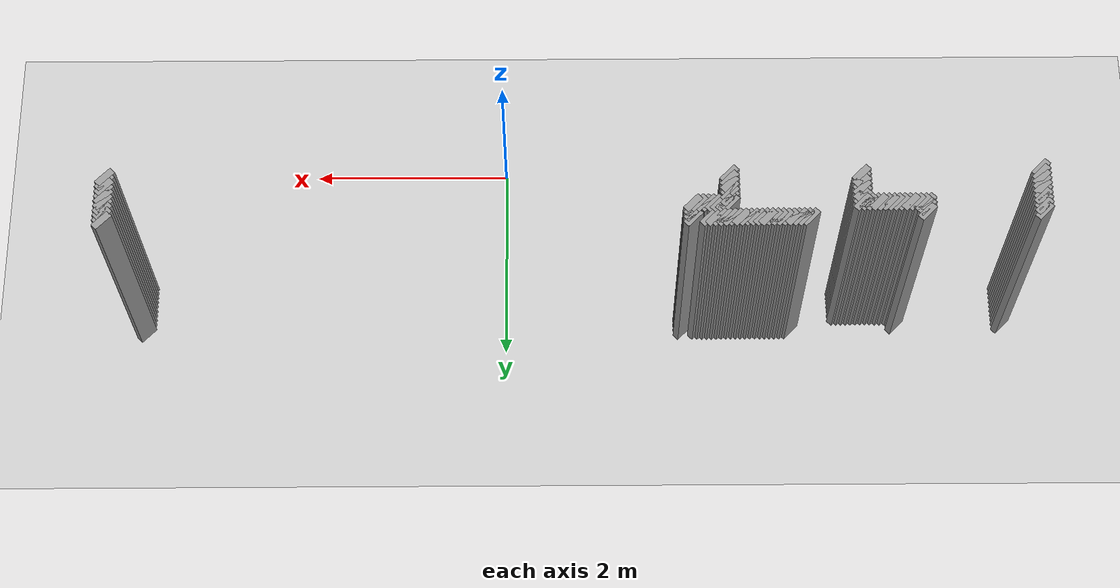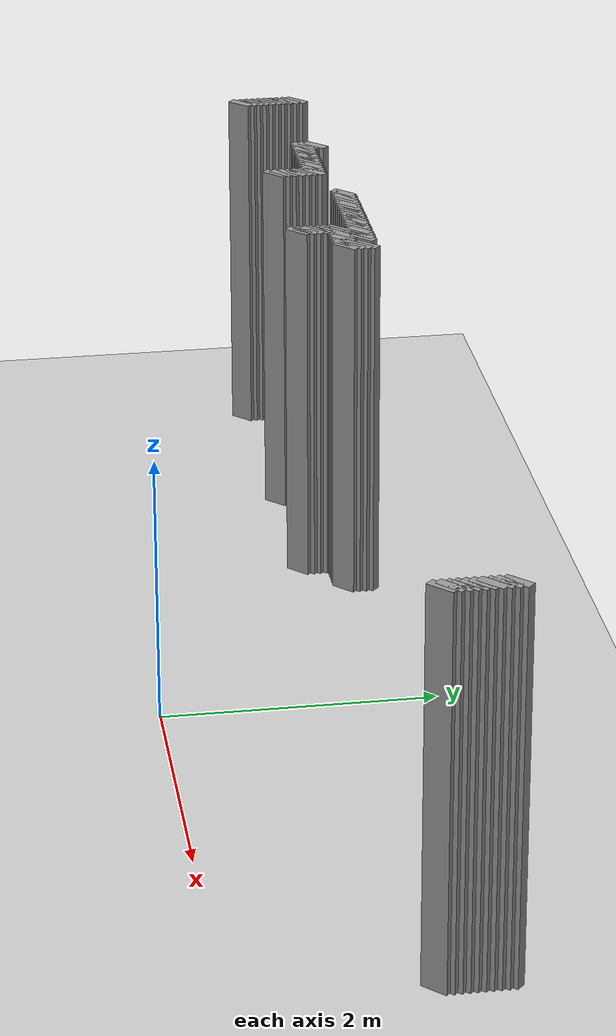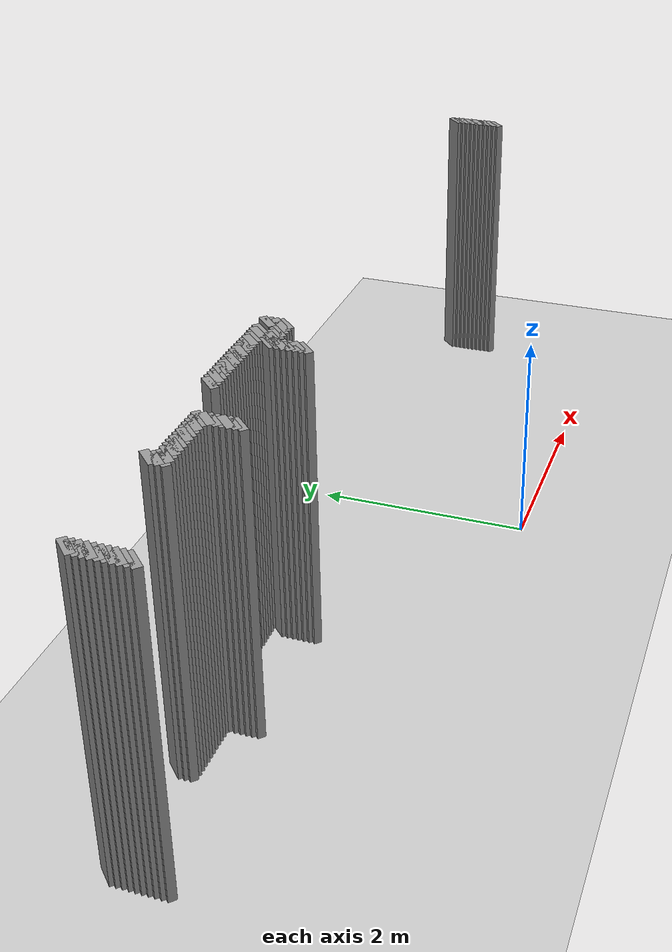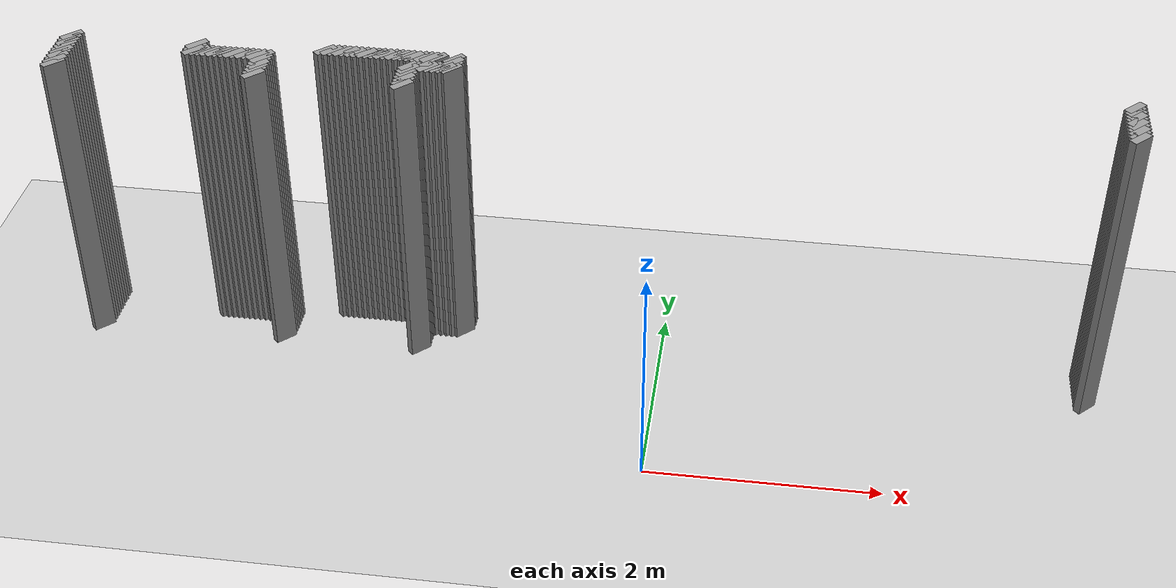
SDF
<sdf version="1.5">
 <world name="default">
  <include><uri>model://ground_plane</uri></include>
  <include><uri>model://sun</uri></include>
  <model name="grey_wall_708">
   <static>1</static>
   <link name="link">
    <pose>-2.925 1.775  1.4 0 0 -0.785398163397</pose>
    <collision name="collision"><geometry><box><size>0.0707106781187 .2  2.8</size></box></geometry></collision>
    <visual name="visual">
     <cast_shadows>0</cast_shadows>
     <geometry><box><size>0.0707106781187 .2  2.8</size></box></geometry>
     <material>
      <script>
       <uri>model://grey_wall/materials/scripts</uri>
       <uri>model://grey_wall/materials/textures</uri>
       <name>vrc/grey_wall</name>
      </script>
     </material>
    </visual>
   </link>
  </model>
  <model name="grey_wall_709">
   <static>1</static>
   <link name="link">
    <pose>-2.875 1.775  1.4 0 0 -0.785398163397</pose>
    <collision name="collision"><geometry><box><size>0.0707106781187 .2  2.8</size></box></geometry></collision>
    <visual name="visual">
     <cast_shadows>0</cast_shadows>
     <geometry><box><size>0.0707106781187 .2  2.8</size></box></geometry>
     <material>
      <script>
       <uri>model://grey_wall/materials/scripts</uri>
       <uri>model://grey_wall/materials/textures</uri>
       <name>vrc/grey_wall</name>
      </script>
     </material>
    </visual>
   </link>
  </model>
  <model name="grey_wall_710">
   <static>1</static>
   <link name="link">
    <pose>-2.825 1.775  1.4 0 0 -0.785398163397</pose>
    <collision name="collision"><geometry><box><size>0.0707106781187 .2  2.8</size></box></geometry></collision>
    <visual name="visual">
     <cast_shadows>0</cast_shadows>
     <geometry><box><size>0.0707106781187 .2  2.8</size></box></geometry>
     <material>
      <script>
       <uri>model://grey_wall/materials/scripts</uri>
       <uri>model://grey_wall/materials/textures</uri>
       <name>vrc/grey_wall</name>
      </script>
     </material>
    </visual>
   </link>
  </model>
  <model name="grey_wall_711">
   <static>1</static>
   <link name="link">
    <pose>-2.775 1.775  1.4 0 0 -0.785398163397</pose>
    <collision name="collision"><geometry><box><size>0.0707106781187 .2  2.8</size></box></geometry></collision>
    <visual name="visual">
     <cast_shadows>0</cast_shadows>
     <geometry><box><size>0.0707106781187 .2  2.8</size></box></geometry>
     <material>
      <script>
       <uri>model://grey_wall/materials/scripts</uri>
       <uri>model://grey_wall/materials/textures</uri>
       <name>vrc/grey_wall</name>
      </script>
     </material>
    </visual>
   </link>
  </model>
  <model name="grey_wall_712">
   <static>1</static>
   <link name="link">
    <pose>-2.725 1.775  1.4 0 0 -0.785398163397</pose>
    <collision name="collision"><geometry><box><size>0.0707106781187 .2  2.8</size></box></geometry></collision>
    <visual name="visual">
     <cast_shadows>0</cast_shadows>
     <geometry><box><size>0.0707106781187 .2  2.8</size></box></geometry>
     <material>
      <script>
       <uri>model://grey_wall/materials/scripts</uri>
       <uri>model://grey_wall/materials/textures</uri>
       <name>vrc/grey_wall</name>
      </script>
     </material>
    </visual>
   </link>
  </model>
  <model name="grey_wall_713">
   <static>1</static>
   <link name="link">
    <pose>-2.675 1.775  1.4 0 0 -0.785398163397</pose>
    <collision name="collision"><geometry><box><size>0.0707106781187 .2  2.8</size></box></geometry></collision>
    <visual name="visual">
     <cast_shadows>0</cast_shadows>
     <geometry><box><size>0.0707106781187 .2  2.8</size></box></geometry>
     <material>
      <script>
       <uri>model://grey_wall/materials/scripts</uri>
       <uri>model://grey_wall/materials/textures</uri>
       <name>vrc/grey_wall</name>
      </script>
     </material>
    </visual>
   </link>
  </model>
  <model name="grey_wall_714">
   <static>1</static>
   <link name="link">
    <pose>-2.625 1.775  1.4 0 0 -0.785398163397</pose>
    <collision name="collision"><geometry><box><size>0.0707106781187 .2  2.8</size></box></geometry></collision>
    <visual name="visual">
     <cast_shadows>0</cast_shadows>
     <geometry><box><size>0.0707106781187 .2  2.8</size></box></geometry>
     <material>
      <script>
       <uri>model://grey_wall/materials/scripts</uri>
       <uri>model://grey_wall/materials/textures</uri>
       <name>vrc/grey_wall</name>
      </script>
     </material>
    </visual>
   </link>
  </model>
  <model name="grey_wall_715">
   <static>1</static>
   <link name="link">
    <pose>-2.575 1.775  1.4 0 0 -0.785398163397</pose>
    <collision name="collision"><geometry><box><size>0.0707106781187 .2  2.8</size></box></geometry></collision>
    <visual name="visual">
     <cast_shadows>0</cast_shadows>
     <geometry><box><size>0.0707106781187 .2  2.8</size></box></geometry>
     <material>
      <script>
       <uri>model://grey_wall/materials/scripts</uri>
       <uri>model://grey_wall/materials/textures</uri>
       <name>vrc/grey_wall</name>
      </script>
     </material>
    </visual>
   </link>
  </model>
  <model name="grey_wall_716">
   <static>1</static>
   <link name="link">
    <pose>-2.525 1.775  1.4 0 0 -0.785398163397</pose>
    <collision name="collision"><geometry><box><size>0.0707106781187 .2  2.8</size></box></geometry></collision>
    <visual name="visual">
     <cast_shadows>0</cast_shadows>
     <geometry><box><size>0.0707106781187 .2  2.8</size></box></geometry>
     <material>
      <script>
       <uri>model://grey_wall/materials/scripts</uri>
       <uri>model://grey_wall/materials/textures</uri>
       <name>vrc/grey_wall</name>
      </script>
     </material>
    </visual>
   </link>
  </model>
  <model name="grey_wall_717">
   <static>1</static>
   <link name="link">
    <pose>-2.475 1.775  1.4 0 0 -0.785398163397</pose>
    <collision name="collision"><geometry><box><size>0.0707106781187 .2  2.8</size></box></geometry></collision>
    <visual name="visual">
     <cast_shadows>0</cast_shadows>
     <geometry><box><size>0.0707106781187 .2  2.8</size></box></geometry>
     <material>
      <script>
       <uri>model://grey_wall/materials/scripts</uri>
       <uri>model://grey_wall/materials/textures</uri>
       <name>vrc/grey_wall</name>
      </script>
     </material>
    </visual>
   </link>
  </model>
  <model name="grey_wall_718">
   <static>1</static>
   <link name="link">
    <pose>-2.425 1.775  1.4 0 0 -0.785398163397</pose>
    <collision name="collision"><geometry><box><size>0.0707106781187 .2  2.8</size></box></geometry></collision>
    <visual name="visual">
     <cast_shadows>0</cast_shadows>
     <geometry><box><size>0.0707106781187 .2  2.8</size></box></geometry>
     <material>
      <script>
       <uri>model://grey_wall/materials/scripts</uri>
       <uri>model://grey_wall/materials/textures</uri>
       <name>vrc/grey_wall</name>
      </script>
     </material>
    </visual>
   </link>
  </model>
  <model name="grey_wall_719">
   <static>1</static>
   <link name="link">
    <pose>-2.375 1.775  1.4 0 0 -0.785398163397</pose>
    <collision name="collision"><geometry><box><size>0.0707106781187 .2  2.8</size></box></geometry></collision>
    <visual name="visual">
     <cast_shadows>0</cast_shadows>
     <geometry><box><size>0.0707106781187 .2  2.8</size></box></geometry>
     <material>
      <script>
       <uri>model://grey_wall/materials/scripts</uri>
       <uri>model://grey_wall/materials/textures</uri>
       <name>vrc/grey_wall</name>
      </script>
     </material>
    </visual>
   </link>
  </model>
  <model name="grey_wall_720">
   <static>1</static>
   <link name="link">
    <pose>-2.325 1.775  1.4 0 0 -0.785398163397</pose>
    <collision name="collision"><geometry><box><size>0.0707106781187 .2  2.8</size></box></geometry></collision>
    <visual name="visual">
     <cast_shadows>0</cast_shadows>
     <geometry><box><size>0.0707106781187 .2  2.8</size></box></geometry>
     <material>
      <script>
       <uri>model://grey_wall/materials/scripts</uri>
       <uri>model://grey_wall/materials/textures</uri>
       <name>vrc/grey_wall</name>
      </script>
     </material>
    </visual>
   </link>
  </model>
  <model name="grey_wall_721">
   <static>1</static>
   <link name="link">
    <pose>-2.275 1.775  1.4 0 0 -0.785398163397</pose>
    <collision name="collision"><geometry><box><size>0.0707106781187 .2  2.8</size></box></geometry></collision>
    <visual name="visual">
     <cast_shadows>0</cast_shadows>
     <geometry><box><size>0.0707106781187 .2  2.8</size></box></geometry>
     <material>
      <script>
       <uri>model://grey_wall/materials/scripts</uri>
       <uri>model://grey_wall/materials/textures</uri>
       <name>vrc/grey_wall</name>
      </script>
     </material>
    </visual>
   </link>
  </model>
  <model name="grey_wall_722">
   <static>1</static>
   <link name="link">
    <pose>-2.225 1.775  1.4 0 0 -0.785398163397</pose>
    <collision name="collision"><geometry><box><size>0.0707106781187 .2  2.8</size></box></geometry></collision>
    <visual name="visual">
     <cast_shadows>0</cast_shadows>
     <geometry><box><size>0.0707106781187 .2  2.8</size></box></geometry>
     <material>
      <script>
       <uri>model://grey_wall/materials/scripts</uri>
       <uri>model://grey_wall/materials/textures</uri>
       <name>vrc/grey_wall</name>
      </script>
     </material>
    </visual>
   </link>
  </model>
  <model name="grey_wall_723">
   <static>1</static>
   <link name="link">
    <pose>-2.175 1.775  1.4 0 0 -0.785398163397</pose>
    <collision name="collision"><geometry><box><size>0.0707106781187 .2  2.8</size></box></geometry></collision>
    <visual name="visual">
     <cast_shadows>0</cast_shadows>
     <geometry><box><size>0.0707106781187 .2  2.8</size></box></geometry>
     <material>
      <script>
       <uri>model://grey_wall/materials/scripts</uri>
       <uri>model://grey_wall/materials/textures</uri>
       <name>vrc/grey_wall</name>
      </script>
     </material>
    </visual>
   </link>
  </model>
  <model name="grey_wall_724">
   <static>1</static>
   <link name="link">
    <pose>-2.125 1.775  1.4 0 0 -0.785398163397</pose>
    <collision name="collision"><geometry><box><size>0.0707106781187 .2  2.8</size></box></geometry></collision>
    <visual name="visual">
     <cast_shadows>0</cast_shadows>
     <geometry><box><size>0.0707106781187 .2  2.8</size></box></geometry>
     <material>
      <script>
       <uri>model://grey_wall/materials/scripts</uri>
       <uri>model://grey_wall/materials/textures</uri>
       <name>vrc/grey_wall</name>
      </script>
     </material>
    </visual>
   </link>
  </model>
  <model name="grey_wall_725">
   <static>1</static>
   <link name="link">
    <pose>-2.075 1.775  1.4 0 0 -0.785398163397</pose>
    <collision name="collision"><geometry><box><size>0.0707106781187 .2  2.8</size></box></geometry></collision>
    <visual name="visual">
     <cast_shadows>0</cast_shadows>
     <geometry><box><size>0.0707106781187 .2  2.8</size></box></geometry>
     <material>
      <script>
       <uri>model://grey_wall/materials/scripts</uri>
       <uri>model://grey_wall/materials/textures</uri>
       <name>vrc/grey_wall</name>
      </script>
     </material>
    </visual>
   </link>
  </model>
  <model name="grey_wall_726">
   <static>1</static>
   <link name="link">
    <pose>-2.025 1.775  1.4 0 0 -0.785398163397</pose>
    <collision name="collision"><geometry><box><size>0.0707106781187 .2  2.8</size></box></geometry></collision>
    <visual name="visual">
     <cast_shadows>0</cast_shadows>
     <geometry><box><size>0.0707106781187 .2  2.8</size></box></geometry>
     <material>
      <script>
       <uri>model://grey_wall/materials/scripts</uri>
       <uri>model://grey_wall/materials/textures</uri>
       <name>vrc/grey_wall</name>
      </script>
     </material>
    </visual>
   </link>
  </model>
  <model name="grey_wall_727">
   <static>1</static>
   <link name="link">
    <pose>-1.975 1.775  1.4 0 0 -0.785398163397</pose>
    <collision name="collision"><geometry><box><size>0.0707106781187 .2  2.8</size></box></geometry></collision>
    <visual name="visual">
     <cast_shadows>0</cast_shadows>
     <geometry><box><size>0.0707106781187 .2  2.8</size></box></geometry>
     <material>
      <script>
       <uri>model://grey_wall/materials/scripts</uri>
       <uri>model://grey_wall/materials/textures</uri>
       <name>vrc/grey_wall</name>
      </script>
     </material>
    </visual>
   </link>
  </model>
  <model name="grey_wall_728">
   <static>1</static>
   <link name="link">
    <pose>-1.825 1.775  1.4 0 0 -0.785398163397</pose>
    <collision name="collision"><geometry><box><size>0.0707106781187 .2  2.8</size></box></geometry></collision>
    <visual name="visual">
     <cast_shadows>0</cast_shadows>
     <geometry><box><size>0.0707106781187 .2  2.8</size></box></geometry>
     <material>
      <script>
       <uri>model://grey_wall/materials/scripts</uri>
       <uri>model://grey_wall/materials/textures</uri>
       <name>vrc/grey_wall</name>
      </script>
     </material>
    </visual>
   </link>
  </model>
  <model name="grey_wall_729">
   <static>1</static>
   <link name="link">
    <pose>3.725 1.775  1.4 0 0 -0.785398163397</pose>
    <collision name="collision"><geometry><box><size>0.0707106781187 .2  2.8</size></box></geometry></collision>
    <visual name="visual">
     <cast_shadows>0</cast_shadows>
     <geometry><box><size>0.0707106781187 .2  2.8</size></box></geometry>
     <material>
      <script>
       <uri>model://grey_wall/materials/scripts</uri>
       <uri>model://grey_wall/materials/textures</uri>
       <name>vrc/grey_wall</name>
      </script>
     </material>
    </visual>
   </link>
  </model>
  <model name="grey_wall_730">
   <static>1</static>
   <link name="link">
    <pose>-5.125 1.725  1.4 0 0 -0.785398163397</pose>
    <collision name="collision"><geometry><box><size>0.0707106781187 .2  2.8</size></box></geometry></collision>
    <visual name="visual">
     <cast_shadows>0</cast_shadows>
     <geometry><box><size>0.0707106781187 .2  2.8</size></box></geometry>
     <material>
      <script>
       <uri>model://grey_wall/materials/scripts</uri>
       <uri>model://grey_wall/materials/textures</uri>
       <name>vrc/grey_wall</name>
      </script>
     </material>
    </visual>
   </link>
  </model>
  <model name="grey_wall_731">
   <static>1</static>
   <link name="link">
    <pose>-4.025 1.725  1.4 0 0 -0.785398163397</pose>
    <collision name="collision"><geometry><box><size>0.0707106781187 .2  2.8</size></box></geometry></collision>
    <visual name="visual">
     <cast_shadows>0</cast_shadows>
     <geometry><box><size>0.0707106781187 .2  2.8</size></box></geometry>
     <material>
      <script>
       <uri>model://grey_wall/materials/scripts</uri>
       <uri>model://grey_wall/materials/textures</uri>
       <name>vrc/grey_wall</name>
      </script>
     </material>
    </visual>
   </link>
  </model>
  <model name="grey_wall_732">
   <static>1</static>
   <link name="link">
    <pose>-1.825 1.725  1.4 0 0 -0.785398163397</pose>
    <collision name="collision"><geometry><box><size>0.0707106781187 .2  2.8</size></box></geometry></collision>
    <visual name="visual">
     <cast_shadows>0</cast_shadows>
     <geometry><box><size>0.0707106781187 .2  2.8</size></box></geometry>
     <material>
      <script>
       <uri>model://grey_wall/materials/scripts</uri>
       <uri>model://grey_wall/materials/textures</uri>
       <name>vrc/grey_wall</name>
      </script>
     </material>
    </visual>
   </link>
  </model>
  <model name="grey_wall_733">
   <static>1</static>
   <link name="link">
    <pose>3.725 1.725  1.4 0 0 -0.785398163397</pose>
    <collision name="collision"><geometry><box><size>0.0707106781187 .2  2.8</size></box></geometry></collision>
    <visual name="visual">
     <cast_shadows>0</cast_shadows>
     <geometry><box><size>0.0707106781187 .2  2.8</size></box></geometry>
     <material>
      <script>
       <uri>model://grey_wall/materials/scripts</uri>
       <uri>model://grey_wall/materials/textures</uri>
       <name>vrc/grey_wall</name>
      </script>
     </material>
    </visual>
   </link>
  </model>
  <model name="grey_wall_734">
   <static>1</static>
   <link name="link">
    <pose>-5.125 1.675  1.4 0 0 -0.785398163397</pose>
    <collision name="collision"><geometry><box><size>0.0707106781187 .2  2.8</size></box></geometry></collision>
    <visual name="visual">
     <cast_shadows>0</cast_shadows>
     <geometry><box><size>0.0707106781187 .2  2.8</size></box></geometry>
     <material>
      <script>
       <uri>model://grey_wall/materials/scripts</uri>
       <uri>model://grey_wall/materials/textures</uri>
       <name>vrc/grey_wall</name>
      </script>
     </material>
    </visual>
   </link>
  </model>
  <model name="grey_wall_735">
   <static>1</static>
   <link name="link">
    <pose>-4.025 1.675  1.4 0 0 -0.785398163397</pose>
    <collision name="collision"><geometry><box><size>0.0707106781187 .2  2.8</size></box></geometry></collision>
    <visual name="visual">
     <cast_shadows>0</cast_shadows>
     <geometry><box><size>0.0707106781187 .2  2.8</size></box></geometry>
     <material>
      <script>
       <uri>model://grey_wall/materials/scripts</uri>
       <uri>model://grey_wall/materials/textures</uri>
       <name>vrc/grey_wall</name>
      </script>
     </material>
    </visual>
   </link>
  </model>
  <model name="grey_wall_736">
   <static>1</static>
   <link name="link">
    <pose>-1.825 1.675  1.4 0 0 -0.785398163397</pose>
    <collision name="collision"><geometry><box><size>0.0707106781187 .2  2.8</size></box></geometry></collision>
    <visual name="visual">
     <cast_shadows>0</cast_shadows>
     <geometry><box><size>0.0707106781187 .2  2.8</size></box></geometry>
     <material>
      <script>
       <uri>model://grey_wall/materials/scripts</uri>
       <uri>model://grey_wall/materials/textures</uri>
       <name>vrc/grey_wall</name>
      </script>
     </material>
    </visual>
   </link>
  </model>
  <model name="grey_wall_737">
   <static>1</static>
   <link name="link">
    <pose>3.725 1.675  1.4 0 0 -0.785398163397</pose>
    <collision name="collision"><geometry><box><size>0.0707106781187 .2  2.8</size></box></geometry></collision>
    <visual name="visual">
     <cast_shadows>0</cast_shadows>
     <geometry><box><size>0.0707106781187 .2  2.8</size></box></geometry>
     <material>
      <script>
       <uri>model://grey_wall/materials/scripts</uri>
       <uri>model://grey_wall/materials/textures</uri>
       <name>vrc/grey_wall</name>
      </script>
     </material>
    </visual>
   </link>
  </model>
  <model name="grey_wall_738">
   <static>1</static>
   <link name="link">
    <pose>-5.125 1.625  1.4 0 0 -0.785398163397</pose>
    <collision name="collision"><geometry><box><size>0.0707106781187 .2  2.8</size></box></geometry></collision>
    <visual name="visual">
     <cast_shadows>0</cast_shadows>
     <geometry><box><size>0.0707106781187 .2  2.8</size></box></geometry>
     <material>
      <script>
       <uri>model://grey_wall/materials/scripts</uri>
       <uri>model://grey_wall/materials/textures</uri>
       <name>vrc/grey_wall</name>
      </script>
     </material>
    </visual>
   </link>
  </model>
  <model name="grey_wall_739">
   <static>1</static>
   <link name="link">
    <pose>-4.025 1.625  1.4 0 0 -0.785398163397</pose>
    <collision name="collision"><geometry><box><size>0.0707106781187 .2  2.8</size></box></geometry></collision>
    <visual name="visual">
     <cast_shadows>0</cast_shadows>
     <geometry><box><size>0.0707106781187 .2  2.8</size></box></geometry>
     <material>
      <script>
       <uri>model://grey_wall/materials/scripts</uri>
       <uri>model://grey_wall/materials/textures</uri>
       <name>vrc/grey_wall</name>
      </script>
     </material>
    </visual>
   </link>
  </model>
  <model name="grey_wall_740">
   <static>1</static>
   <link name="link">
    <pose>-3.975 1.625  1.4 0 0 -0.785398163397</pose>
    <collision name="collision"><geometry><box><size>0.0707106781187 .2  2.8</size></box></geometry></collision>
    <visual name="visual">
     <cast_shadows>0</cast_shadows>
     <geometry><box><size>0.0707106781187 .2  2.8</size></box></geometry>
     <material>
      <script>
       <uri>model://grey_wall/materials/scripts</uri>
       <uri>model://grey_wall/materials/textures</uri>
       <name>vrc/grey_wall</name>
      </script>
     </material>
    </visual>
   </link>
  </model>
  <model name="grey_wall_741">
   <static>1</static>
   <link name="link">
    <pose>-3.925 1.625  1.4 0 0 -0.785398163397</pose>
    <collision name="collision"><geometry><box><size>0.0707106781187 .2  2.8</size></box></geometry></collision>
    <visual name="visual">
     <cast_shadows>0</cast_shadows>
     <geometry><box><size>0.0707106781187 .2  2.8</size></box></geometry>
     <material>
      <script>
       <uri>model://grey_wall/materials/scripts</uri>
       <uri>model://grey_wall/materials/textures</uri>
       <name>vrc/grey_wall</name>
      </script>
     </material>
    </visual>
   </link>
  </model>
  <model name="grey_wall_742">
   <static>1</static>
   <link name="link">
    <pose>-3.875 1.625  1.4 0 0 -0.785398163397</pose>
    <collision name="collision"><geometry><box><size>0.0707106781187 .2  2.8</size></box></geometry></collision>
    <visual name="visual">
     <cast_shadows>0</cast_shadows>
     <geometry><box><size>0.0707106781187 .2  2.8</size></box></geometry>
     <material>
      <script>
       <uri>model://grey_wall/materials/scripts</uri>
       <uri>model://grey_wall/materials/textures</uri>
       <name>vrc/grey_wall</name>
      </script>
     </material>
    </visual>
   </link>
  </model>
  <model name="grey_wall_743">
   <static>1</static>
   <link name="link">
    <pose>-3.825 1.625  1.4 0 0 -0.785398163397</pose>
    <collision name="collision"><geometry><box><size>0.0707106781187 .2  2.8</size></box></geometry></collision>
    <visual name="visual">
     <cast_shadows>0</cast_shadows>
     <geometry><box><size>0.0707106781187 .2  2.8</size></box></geometry>
     <material>
      <script>
       <uri>model://grey_wall/materials/scripts</uri>
       <uri>model://grey_wall/materials/textures</uri>
       <name>vrc/grey_wall</name>
      </script>
     </material>
    </visual>
   </link>
  </model>
  <model name="grey_wall_744">
   <static>1</static>
   <link name="link">
    <pose>-3.775 1.625  1.4 0 0 -0.785398163397</pose>
    <collision name="collision"><geometry><box><size>0.0707106781187 .2  2.8</size></box></geometry></collision>
    <visual name="visual">
     <cast_shadows>0</cast_shadows>
     <geometry><box><size>0.0707106781187 .2  2.8</size></box></geometry>
     <material>
      <script>
       <uri>model://grey_wall/materials/scripts</uri>
       <uri>model://grey_wall/materials/textures</uri>
       <name>vrc/grey_wall</name>
      </script>
     </material>
    </visual>
   </link>
  </model>
  <model name="grey_wall_745">
   <static>1</static>
   <link name="link">
    <pose>-3.725 1.625  1.4 0 0 -0.785398163397</pose>
    <collision name="collision"><geometry><box><size>0.0707106781187 .2  2.8</size></box></geometry></collision>
    <visual name="visual">
     <cast_shadows>0</cast_shadows>
     <geometry><box><size>0.0707106781187 .2  2.8</size></box></geometry>
     <material>
      <script>
       <uri>model://grey_wall/materials/scripts</uri>
       <uri>model://grey_wall/materials/textures</uri>
       <name>vrc/grey_wall</name>
      </script>
     </material>
    </visual>
   </link>
  </model>
  <model name="grey_wall_746">
   <static>1</static>
   <link name="link">
    <pose>-3.675 1.625  1.4 0 0 -0.785398163397</pose>
    <collision name="collision"><geometry><box><size>0.0707106781187 .2  2.8</size></box></geometry></collision>
    <visual name="visual">
     <cast_shadows>0</cast_shadows>
     <geometry><box><size>0.0707106781187 .2  2.8</size></box></geometry>
     <material>
      <script>
       <uri>model://grey_wall/materials/scripts</uri>
       <uri>model://grey_wall/materials/textures</uri>
       <name>vrc/grey_wall</name>
      </script>
     </material>
    </visual>
   </link>
  </model>
  <model name="grey_wall_747">
   <static>1</static>
   <link name="link">
    <pose>-3.625 1.625  1.4 0 0 -0.785398163397</pose>
    <collision name="collision"><geometry><box><size>0.0707106781187 .2  2.8</size></box></geometry></collision>
    <visual name="visual">
     <cast_shadows>0</cast_shadows>
     <geometry><box><size>0.0707106781187 .2  2.8</size></box></geometry>
     <material>
      <script>
       <uri>model://grey_wall/materials/scripts</uri>
       <uri>model://grey_wall/materials/textures</uri>
       <name>vrc/grey_wall</name>
      </script>
     </material>
    </visual>
   </link>
  </model>
  <model name="grey_wall_748">
   <static>1</static>
   <link name="link">
    <pose>-3.575 1.625  1.4 0 0 -0.785398163397</pose>
    <collision name="collision"><geometry><box><size>0.0707106781187 .2  2.8</size></box></geometry></collision>
    <visual name="visual">
     <cast_shadows>0</cast_shadows>
     <geometry><box><size>0.0707106781187 .2  2.8</size></box></geometry>
     <material>
      <script>
       <uri>model://grey_wall/materials/scripts</uri>
       <uri>model://grey_wall/materials/textures</uri>
       <name>vrc/grey_wall</name>
      </script>
     </material>
    </visual>
   </link>
  </model>
  <model name="grey_wall_749">
   <static>1</static>
   <link name="link">
    <pose>-3.525 1.625  1.4 0 0 -0.785398163397</pose>
    <collision name="collision"><geometry><box><size>0.0707106781187 .2  2.8</size></box></geometry></collision>
    <visual name="visual">
     <cast_shadows>0</cast_shadows>
     <geometry><box><size>0.0707106781187 .2  2.8</size></box></geometry>
     <material>
      <script>
       <uri>model://grey_wall/materials/scripts</uri>
       <uri>model://grey_wall/materials/textures</uri>
       <name>vrc/grey_wall</name>
      </script>
     </material>
    </visual>
   </link>
  </model>
  <model name="grey_wall_750">
   <static>1</static>
   <link name="link">
    <pose>-3.475 1.625  1.4 0 0 -0.785398163397</pose>
    <collision name="collision"><geometry><box><size>0.0707106781187 .2  2.8</size></box></geometry></collision>
    <visual name="visual">
     <cast_shadows>0</cast_shadows>
     <geometry><box><size>0.0707106781187 .2  2.8</size></box></geometry>
     <material>
      <script>
       <uri>model://grey_wall/materials/scripts</uri>
       <uri>model://grey_wall/materials/textures</uri>
       <name>vrc/grey_wall</name>
      </script>
     </material>
    </visual>
   </link>
  </model>
  <model name="grey_wall_751">
   <static>1</static>
   <link name="link">
    <pose>-3.425 1.625  1.4 0 0 -0.785398163397</pose>
    <collision name="collision"><geometry><box><size>0.0707106781187 .2  2.8</size></box></geometry></collision>
    <visual name="visual">
     <cast_shadows>0</cast_shadows>
     <geometry><box><size>0.0707106781187 .2  2.8</size></box></geometry>
     <material>
      <script>
       <uri>model://grey_wall/materials/scripts</uri>
       <uri>model://grey_wall/materials/textures</uri>
       <name>vrc/grey_wall</name>
      </script>
     </material>
    </visual>
   </link>
  </model>
  <model name="grey_wall_752">
   <static>1</static>
   <link name="link">
    <pose>-2.175 1.625  1.4 0 0 -0.785398163397</pose>
    <collision name="collision"><geometry><box><size>0.0707106781187 .2  2.8</size></box></geometry></collision>
    <visual name="visual">
     <cast_shadows>0</cast_shadows>
     <geometry><box><size>0.0707106781187 .2  2.8</size></box></geometry>
     <material>
      <script>
       <uri>model://grey_wall/materials/scripts</uri>
       <uri>model://grey_wall/materials/textures</uri>
       <name>vrc/grey_wall</name>
      </script>
     </material>
    </visual>
   </link>
  </model>
  <model name="grey_wall_753">
   <static>1</static>
   <link name="link">
    <pose>-2.125 1.625  1.4 0 0 -0.785398163397</pose>
    <collision name="collision"><geometry><box><size>0.0707106781187 .2  2.8</size></box></geometry></collision>
    <visual name="visual">
     <cast_shadows>0</cast_shadows>
     <geometry><box><size>0.0707106781187 .2  2.8</size></box></geometry>
     <material>
      <script>
       <uri>model://grey_wall/materials/scripts</uri>
       <uri>model://grey_wall/materials/textures</uri>
       <name>vrc/grey_wall</name>
      </script>
     </material>
    </visual>
   </link>
  </model>
  <model name="grey_wall_754">
   <static>1</static>
   <link name="link">
    <pose>-2.075 1.625  1.4 0 0 -0.785398163397</pose>
    <collision name="collision"><geometry><box><size>0.0707106781187 .2  2.8</size></box></geometry></collision>
    <visual name="visual">
     <cast_shadows>0</cast_shadows>
     <geometry><box><size>0.0707106781187 .2  2.8</size></box></geometry>
     <material>
      <script>
       <uri>model://grey_wall/materials/scripts</uri>
       <uri>model://grey_wall/materials/textures</uri>
       <name>vrc/grey_wall</name>
      </script>
     </material>
    </visual>
   </link>
  </model>
  <model name="grey_wall_755">
   <static>1</static>
   <link name="link">
    <pose>-2.025 1.625  1.4 0 0 -0.785398163397</pose>
    <collision name="collision"><geometry><box><size>0.0707106781187 .2  2.8</size></box></geometry></collision>
    <visual name="visual">
     <cast_shadows>0</cast_shadows>
     <geometry><box><size>0.0707106781187 .2  2.8</size></box></geometry>
     <material>
      <script>
       <uri>model://grey_wall/materials/scripts</uri>
       <uri>model://grey_wall/materials/textures</uri>
       <name>vrc/grey_wall</name>
      </script>
     </material>
    </visual>
   </link>
  </model>
  <model name="grey_wall_756">
   <static>1</static>
   <link name="link">
    <pose>-1.975 1.625  1.4 0 0 -0.785398163397</pose>
    <collision name="collision"><geometry><box><size>0.0707106781187 .2  2.8</size></box></geometry></collision>
    <visual name="visual">
     <cast_shadows>0</cast_shadows>
     <geometry><box><size>0.0707106781187 .2  2.8</size></box></geometry>
     <material>
      <script>
       <uri>model://grey_wall/materials/scripts</uri>
       <uri>model://grey_wall/materials/textures</uri>
       <name>vrc/grey_wall</name>
      </script>
     </material>
    </visual>
   </link>
  </model>
  <model name="grey_wall_757">
   <static>1</static>
   <link name="link">
    <pose>-1.925 1.625  1.4 0 0 -0.785398163397</pose>
    <collision name="collision"><geometry><box><size>0.0707106781187 .2  2.8</size></box></geometry></collision>
    <visual name="visual">
     <cast_shadows>0</cast_shadows>
     <geometry><box><size>0.0707106781187 .2  2.8</size></box></geometry>
     <material>
      <script>
       <uri>model://grey_wall/materials/scripts</uri>
       <uri>model://grey_wall/materials/textures</uri>
       <name>vrc/grey_wall</name>
      </script>
     </material>
    </visual>
   </link>
  </model>
  <model name="grey_wall_758">
   <static>1</static>
   <link name="link">
    <pose>-1.875 1.625  1.4 0 0 -0.785398163397</pose>
    <collision name="collision"><geometry><box><size>0.0707106781187 .2  2.8</size></box></geometry></collision>
    <visual name="visual">
     <cast_shadows>0</cast_shadows>
     <geometry><box><size>0.0707106781187 .2  2.8</size></box></geometry>
     <material>
      <script>
       <uri>model://grey_wall/materials/scripts</uri>
       <uri>model://grey_wall/materials/textures</uri>
       <name>vrc/grey_wall</name>
      </script>
     </material>
    </visual>
   </link>
  </model>
  <model name="grey_wall_759">
   <static>1</static>
   <link name="link">
    <pose>-1.825 1.625  1.4 0 0 -0.785398163397</pose>
    <collision name="collision"><geometry><box><size>0.0707106781187 .2  2.8</size></box></geometry></collision>
    <visual name="visual">
     <cast_shadows>0</cast_shadows>
     <geometry><box><size>0.0707106781187 .2  2.8</size></box></geometry>
     <material>
      <script>
       <uri>model://grey_wall/materials/scripts</uri>
       <uri>model://grey_wall/materials/textures</uri>
       <name>vrc/grey_wall</name>
      </script>
     </material>
    </visual>
   </link>
  </model>
  <model name="grey_wall_760">
   <static>1</static>
   <link name="link">
    <pose>3.725 1.625  1.4 0 0 -0.785398163397</pose>
    <collision name="collision"><geometry><box><size>0.0707106781187 .2  2.8</size></box></geometry></collision>
    <visual name="visual">
     <cast_shadows>0</cast_shadows>
     <geometry><box><size>0.0707106781187 .2  2.8</size></box></geometry>
     <material>
      <script>
       <uri>model://grey_wall/materials/scripts</uri>
       <uri>model://grey_wall/materials/textures</uri>
       <name>vrc/grey_wall</name>
      </script>
     </material>
    </visual>
   </link>
  </model>
  <model name="grey_wall_761">
   <static>1</static>
   <link name="link">
    <pose>-5.125 1.575  1.4 0 0 -0.785398163397</pose>
    <collision name="collision"><geometry><box><size>0.0707106781187 .2  2.8</size></box></geometry></collision>
    <visual name="visual">
     <cast_shadows>0</cast_shadows>
     <geometry><box><size>0.0707106781187 .2  2.8</size></box></geometry>
     <material>
      <script>
       <uri>model://grey_wall/materials/scripts</uri>
       <uri>model://grey_wall/materials/textures</uri>
       <name>vrc/grey_wall</name>
      </script>
     </material>
    </visual>
   </link>
  </model>
  <model name="grey_wall_762">
   <static>1</static>
   <link name="link">
    <pose>-3.425 1.575  1.4 0 0 -0.785398163397</pose>
    <collision name="collision"><geometry><box><size>0.0707106781187 .2  2.8</size></box></geometry></collision>
    <visual name="visual">
     <cast_shadows>0</cast_shadows>
     <geometry><box><size>0.0707106781187 .2  2.8</size></box></geometry>
     <material>
      <script>
       <uri>model://grey_wall/materials/scripts</uri>
       <uri>model://grey_wall/materials/textures</uri>
       <name>vrc/grey_wall</name>
      </script>
     </material>
    </visual>
   </link>
  </model>
  <model name="grey_wall_763">
   <static>1</static>
   <link name="link">
    <pose>-2.175 1.575  1.4 0 0 -0.785398163397</pose>
    <collision name="collision"><geometry><box><size>0.0707106781187 .2  2.8</size></box></geometry></collision>
    <visual name="visual">
     <cast_shadows>0</cast_shadows>
     <geometry><box><size>0.0707106781187 .2  2.8</size></box></geometry>
     <material>
      <script>
       <uri>model://grey_wall/materials/scripts</uri>
       <uri>model://grey_wall/materials/textures</uri>
       <name>vrc/grey_wall</name>
      </script>
     </material>
    </visual>
   </link>
  </model>
  <model name="grey_wall_764">
   <static>1</static>
   <link name="link">
    <pose>3.725 1.575  1.4 0 0 -0.785398163397</pose>
    <collision name="collision"><geometry><box><size>0.0707106781187 .2  2.8</size></box></geometry></collision>
    <visual name="visual">
     <cast_shadows>0</cast_shadows>
     <geometry><box><size>0.0707106781187 .2  2.8</size></box></geometry>
     <material>
      <script>
       <uri>model://grey_wall/materials/scripts</uri>
       <uri>model://grey_wall/materials/textures</uri>
       <name>vrc/grey_wall</name>
      </script>
     </material>
    </visual>
   </link>
  </model>
  <model name="grey_wall_765">
   <static>1</static>
   <link name="link">
    <pose>-5.125 1.525  1.4 0 0 -0.785398163397</pose>
    <collision name="collision"><geometry><box><size>0.0707106781187 .2  2.8</size></box></geometry></collision>
    <visual name="visual">
     <cast_shadows>0</cast_shadows>
     <geometry><box><size>0.0707106781187 .2  2.8</size></box></geometry>
     <material>
      <script>
       <uri>model://grey_wall/materials/scripts</uri>
       <uri>model://grey_wall/materials/textures</uri>
       <name>vrc/grey_wall</name>
      </script>
     </material>
    </visual>
   </link>
  </model>
  <model name="grey_wall_766">
   <static>1</static>
   <link name="link">
    <pose>-3.425 1.525  1.4 0 0 -0.785398163397</pose>
    <collision name="collision"><geometry><box><size>0.0707106781187 .2  2.8</size></box></geometry></collision>
    <visual name="visual">
     <cast_shadows>0</cast_shadows>
     <geometry><box><size>0.0707106781187 .2  2.8</size></box></geometry>
     <material>
      <script>
       <uri>model://grey_wall/materials/scripts</uri>
       <uri>model://grey_wall/materials/textures</uri>
       <name>vrc/grey_wall</name>
      </script>
     </material>
    </visual>
   </link>
  </model>
  <model name="grey_wall_767">
   <static>1</static>
   <link name="link">
    <pose>-2.175 1.525  1.4 0 0 -0.785398163397</pose>
    <collision name="collision"><geometry><box><size>0.0707106781187 .2  2.8</size></box></geometry></collision>
    <visual name="visual">
     <cast_shadows>0</cast_shadows>
     <geometry><box><size>0.0707106781187 .2  2.8</size></box></geometry>
     <material>
      <script>
       <uri>model://grey_wall/materials/scripts</uri>
       <uri>model://grey_wall/materials/textures</uri>
       <name>vrc/grey_wall</name>
      </script>
     </material>
    </visual>
   </link>
  </model>
  <model name="grey_wall_768">
   <static>1</static>
   <link name="link">
    <pose>3.725 1.525  1.4 0 0 -0.785398163397</pose>
    <collision name="collision"><geometry><box><size>0.0707106781187 .2  2.8</size></box></geometry></collision>
    <visual name="visual">
     <cast_shadows>0</cast_shadows>
     <geometry><box><size>0.0707106781187 .2  2.8</size></box></geometry>
     <material>
      <script>
       <uri>model://grey_wall/materials/scripts</uri>
       <uri>model://grey_wall/materials/textures</uri>
       <name>vrc/grey_wall</name>
      </script>
     </material>
    </visual>
   </link>
  </model>
  <model name="grey_wall_769">
   <static>1</static>
   <link name="link">
    <pose>-5.125 1.475  1.4 0 0 -0.785398163397</pose>
    <collision name="collision"><geometry><box><size>0.0707106781187 .2  2.8</size></box></geometry></collision>
    <visual name="visual">
     <cast_shadows>0</cast_shadows>
     <geometry><box><size>0.0707106781187 .2  2.8</size></box></geometry>
     <material>
      <script>
       <uri>model://grey_wall/materials/scripts</uri>
       <uri>model://grey_wall/materials/textures</uri>
       <name>vrc/grey_wall</name>
      </script>
     </material>
    </visual>
   </link>
  </model>
  <model name="grey_wall_770">
   <static>1</static>
   <link name="link">
    <pose>-3.425 1.475  1.4 0 0 -0.785398163397</pose>
    <collision name="collision"><geometry><box><size>0.0707106781187 .2  2.8</size></box></geometry></collision>
    <visual name="visual">
     <cast_shadows>0</cast_shadows>
     <geometry><box><size>0.0707106781187 .2  2.8</size></box></geometry>
     <material>
      <script>
       <uri>model://grey_wall/materials/scripts</uri>
       <uri>model://grey_wall/materials/textures</uri>
       <name>vrc/grey_wall</name>
      </script>
     </material>
    </visual>
   </link>
  </model>
  <model name="grey_wall_771">
   <static>1</static>
   <link name="link">
    <pose>-2.175 1.475  1.4 0 0 -0.785398163397</pose>
    <collision name="collision"><geometry><box><size>0.0707106781187 .2  2.8</size></box></geometry></collision>
    <visual name="visual">
     <cast_shadows>0</cast_shadows>
     <geometry><box><size>0.0707106781187 .2  2.8</size></box></geometry>
     <material>
      <script>
       <uri>model://grey_wall/materials/scripts</uri>
       <uri>model://grey_wall/materials/textures</uri>
       <name>vrc/grey_wall</name>
      </script>
     </material>
    </visual>
   </link>
  </model>
  <model name="grey_wall_772">
   <static>1</static>
   <link name="link">
    <pose>3.725 1.475  1.4 0 0 -0.785398163397</pose>
    <collision name="collision"><geometry><box><size>0.0707106781187 .2  2.8</size></box></geometry></collision>
    <visual name="visual">
     <cast_shadows>0</cast_shadows>
     <geometry><box><size>0.0707106781187 .2  2.8</size></box></geometry>
     <material>
      <script>
       <uri>model://grey_wall/materials/scripts</uri>
       <uri>model://grey_wall/materials/textures</uri>
       <name>vrc/grey_wall</name>
      </script>
     </material>
    </visual>
   </link>
  </model>
  <model name="grey_wall_773">
   <static>1</static>
   <link name="link">
    <pose>-5.125 1.425  1.4 0 0 -0.785398163397</pose>
    <collision name="collision"><geometry><box><size>0.0707106781187 .2  2.8</size></box></geometry></collision>
    <visual name="visual">
     <cast_shadows>0</cast_shadows>
     <geometry><box><size>0.0707106781187 .2  2.8</size></box></geometry>
     <material>
      <script>
       <uri>model://grey_wall/materials/scripts</uri>
       <uri>model://grey_wall/materials/textures</uri>
       <name>vrc/grey_wall</name>
      </script>
     </material>
    </visual>
   </link>
  </model>
  <model name="grey_wall_774">
   <static>1</static>
   <link name="link">
    <pose>-3.425 1.425  1.4 0 0 -0.785398163397</pose>
    <collision name="collision"><geometry><box><size>0.0707106781187 .2  2.8</size></box></geometry></collision>
    <visual name="visual">
     <cast_shadows>0</cast_shadows>
     <geometry><box><size>0.0707106781187 .2  2.8</size></box></geometry>
     <material>
      <script>
       <uri>model://grey_wall/materials/scripts</uri>
       <uri>model://grey_wall/materials/textures</uri>
       <name>vrc/grey_wall</name>
      </script>
     </material>
    </visual>
   </link>
  </model>
  <model name="grey_wall_775">
   <static>1</static>
   <link name="link">
    <pose>-2.175 1.425  1.4 0 0 -0.785398163397</pose>
    <collision name="collision"><geometry><box><size>0.0707106781187 .2  2.8</size></box></geometry></collision>
    <visual name="visual">
     <cast_shadows>0</cast_shadows>
     <geometry><box><size>0.0707106781187 .2  2.8</size></box></geometry>
     <material>
      <script>
       <uri>model://grey_wall/materials/scripts</uri>
       <uri>model://grey_wall/materials/textures</uri>
       <name>vrc/grey_wall</name>
      </script>
     </material>
    </visual>
   </link>
  </model>
  <model name="grey_wall_776">
   <static>1</static>
   <link name="link">
    <pose>3.725 1.425  1.4 0 0 -0.785398163397</pose>
    <collision name="collision"><geometry><box><size>0.0707106781187 .2  2.8</size></box></geometry></collision>
    <visual name="visual">
     <cast_shadows>0</cast_shadows>
     <geometry><box><size>0.0707106781187 .2  2.8</size></box></geometry>
     <material>
      <script>
       <uri>model://grey_wall/materials/scripts</uri>
       <uri>model://grey_wall/materials/textures</uri>
       <name>vrc/grey_wall</name>
      </script>
     </material>
    </visual>
   </link>
  </model>
  <model name="grey_wall_777">
   <static>1</static>
   <link name="link">
    <pose>-5.125 1.375  1.4 0 0 -0.785398163397</pose>
    <collision name="collision"><geometry><box><size>0.0707106781187 .2  2.8</size></box></geometry></collision>
    <visual name="visual">
     <cast_shadows>0</cast_shadows>
     <geometry><box><size>0.0707106781187 .2  2.8</size></box></geometry>
     <material>
      <script>
       <uri>model://grey_wall/materials/scripts</uri>
       <uri>model://grey_wall/materials/textures</uri>
       <name>vrc/grey_wall</name>
      </script>
     </material>
    </visual>
   </link>
  </model>
  <model name="grey_wall_778">
   <static>1</static>
   <link name="link">
    <pose>-3.425 1.375  1.4 0 0 -0.785398163397</pose>
    <collision name="collision"><geometry><box><size>0.0707106781187 .2  2.8</size></box></geometry></collision>
    <visual name="visual">
     <cast_shadows>0</cast_shadows>
     <geometry><box><size>0.0707106781187 .2  2.8</size></box></geometry>
     <material>
      <script>
       <uri>model://grey_wall/materials/scripts</uri>
       <uri>model://grey_wall/materials/textures</uri>
       <name>vrc/grey_wall</name>
      </script>
     </material>
    </visual>
   </link>
  </model>
  <model name="grey_wall_779">
   <static>1</static>
   <link name="link">
    <pose>-2.175 1.375  1.4 0 0 -0.785398163397</pose>
    <collision name="collision"><geometry><box><size>0.0707106781187 .2  2.8</size></box></geometry></collision>
    <visual name="visual">
     <cast_shadows>0</cast_shadows>
     <geometry><box><size>0.0707106781187 .2  2.8</size></box></geometry>
     <material>
      <script>
       <uri>model://grey_wall/materials/scripts</uri>
       <uri>model://grey_wall/materials/textures</uri>
       <name>vrc/grey_wall</name>
      </script>
     </material>
    </visual>
   </link>
  </model>
  <model name="grey_wall_780">
   <static>1</static>
   <link name="link">
    <pose>3.725 1.375  1.4 0 0 -0.785398163397</pose>
    <collision name="collision"><geometry><box><size>0.0707106781187 .2  2.8</size></box></geometry></collision>
    <visual name="visual">
     <cast_shadows>0</cast_shadows>
     <geometry><box><size>0.0707106781187 .2  2.8</size></box></geometry>
     <material>
      <script>
       <uri>model://grey_wall/materials/scripts</uri>
       <uri>model://grey_wall/materials/textures</uri>
       <name>vrc/grey_wall</name>
      </script>
     </material>
    </visual>
   </link>
  </model>
  <model name="grey_wall_781">
   <static>1</static>
   <link name="link">
    <pose>-5.125 1.325  1.4 0 0 -0.785398163397</pose>
    <collision name="collision"><geometry><box><size>0.0707106781187 .2  2.8</size></box></geometry></collision>
    <visual name="visual">
     <cast_shadows>0</cast_shadows>
     <geometry><box><size>0.0707106781187 .2  2.8</size></box></geometry>
     <material>
      <script>
       <uri>model://grey_wall/materials/scripts</uri>
       <uri>model://grey_wall/materials/textures</uri>
       <name>vrc/grey_wall</name>
      </script>
     </material>
    </visual>
   </link>
  </model>
  <model name="grey_wall_782">
   <static>1</static>
   <link name="link">
    <pose>-3.425 1.325  1.4 0 0 -0.785398163397</pose>
    <collision name="collision"><geometry><box><size>0.0707106781187 .2  2.8</size></box></geometry></collision>
    <visual name="visual">
     <cast_shadows>0</cast_shadows>
     <geometry><box><size>0.0707106781187 .2  2.8</size></box></geometry>
     <material>
      <script>
       <uri>model://grey_wall/materials/scripts</uri>
       <uri>model://grey_wall/materials/textures</uri>
       <name>vrc/grey_wall</name>
      </script>
     </material>
    </visual>
   </link>
  </model>
  <model name="grey_wall_783">
   <static>1</static>
   <link name="link">
    <pose>-2.175 1.325  1.4 0 0 -0.785398163397</pose>
    <collision name="collision"><geometry><box><size>0.0707106781187 .2  2.8</size></box></geometry></collision>
    <visual name="visual">
     <cast_shadows>0</cast_shadows>
     <geometry><box><size>0.0707106781187 .2  2.8</size></box></geometry>
     <material>
      <script>
       <uri>model://grey_wall/materials/scripts</uri>
       <uri>model://grey_wall/materials/textures</uri>
       <name>vrc/grey_wall</name>
      </script>
     </material>
    </visual>
   </link>
  </model>
  <model name="grey_wall_784">
   <static>1</static>
   <link name="link">
    <pose>3.725 1.325  1.4 0 0 -0.785398163397</pose>
    <collision name="collision"><geometry><box><size>0.0707106781187 .2  2.8</size></box></geometry></collision>
    <visual name="visual">
     <cast_shadows>0</cast_shadows>
     <geometry><box><size>0.0707106781187 .2  2.8</size></box></geometry>
     <material>
      <script>
       <uri>model://grey_wall/materials/scripts</uri>
       <uri>model://grey_wall/materials/textures</uri>
       <name>vrc/grey_wall</name>
      </script>
     </material>
    </visual>
   </link>
  </model>
  <model name="grey_wall_785">
   <static>1</static>
   <link name="link">
    <pose>-5.125 1.275  1.4 0 0 -0.785398163397</pose>
    <collision name="collision"><geometry><box><size>0.0707106781187 .2  2.8</size></box></geometry></collision>
    <visual name="visual">
     <cast_shadows>0</cast_shadows>
     <geometry><box><size>0.0707106781187 .2  2.8</size></box></geometry>
     <material>
      <script>
       <uri>model://grey_wall/materials/scripts</uri>
       <uri>model://grey_wall/materials/textures</uri>
       <name>vrc/grey_wall</name>
      </script>
     </material>
    </visual>
   </link>
  </model>
 </world>
</sdf>
